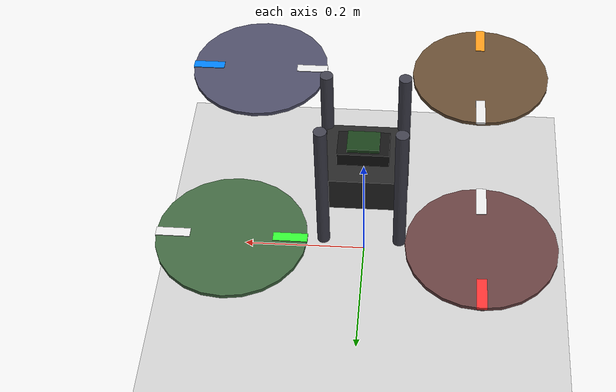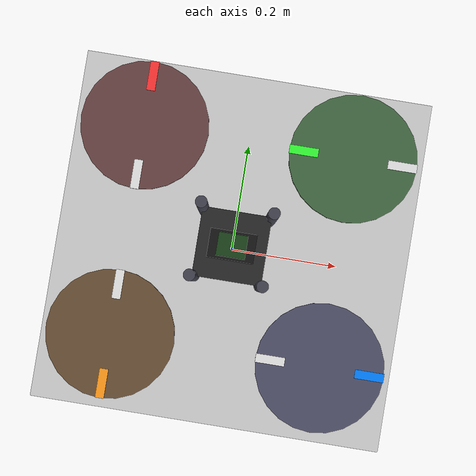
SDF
<?xml version="1.0" ?>
<sdf version="1.6">
  <world name="default">
    <!-- 1. Sun & Ground Plane -->
    <include>
      <uri>model://sun</uri>
    </include>
    <include>
      <uri>model://ground_plane</uri>
    </include>

    <physics type="ode">
      <max_step_size>0.002</max_step_size>
      <real_time_factor>1.0</real_time_factor>
      <real_time_update_rate>500</real_time_update_rate>
    </physics>

    <!-- 2. Iris Quadcopter Model -->
    <model name="iris">
      <pose>0 0 0.2 0 0 0</pose>

      <!-- ROOT LINK: Central Body -->
      <link name="base_link">
        <inertial>
          <mass>1.5</mass>
          <inertia>
            <ixx>0.0347563</ixx>
            <ixy>0</ixy>
            <ixz>0</ixz>
            <iyy>0.0458929</iyy>
            <iyz>0</iyz>
            <izz>0.0977</izz>
          </inertia>
        </inertial>

        <!-- Central body visual - carbon fiber look -->
        <visual name="body_visual">
          <geometry>
            <box>
              <size>0.12 0.12 0.06</size>
            </box>
          </geometry>
          <material>
            <ambient>0.05 0.05 0.05 1</ambient>
            <diffuse>0.15 0.15 0.15 1</diffuse>
            <specular>0.3 0.3 0.3 1</specular>
          </material>
        </visual>

        <!-- Battery compartment visual -->
        <visual name="battery_visual">
          <pose>0 0 0.04 0 0 0</pose>
          <geometry>
            <box>
              <size>0.08 0.05 0.025</size>
            </box>
          </geometry>
          <material>
            <ambient>0.02 0.02 0.02 1</ambient>
            <diffuse>0.08 0.08 0.08 1</diffuse>
            <specular>0.2 0.2 0.2 1</specular>
          </material>
        </visual>

        <!-- Flight controller board visual -->
        <visual name="fc_visual">
          <pose>0 0 0.055 0 0 0</pose>
          <geometry>
            <box>
              <size>0.05 0.04 0.008</size>
            </box>
          </geometry>
          <material>
            <ambient>0.05 0.1 0.05 1</ambient>
            <diffuse>0.1 0.25 0.1 1</diffuse>
            <specular>0.3 0.3 0.3 1</specular>
          </material>
        </visual>

        <!-- Physical collision box -->
        <collision name="body_collision">
          <geometry>
            <box>
              <size>0.12 0.12 0.06</size>
            </box>
          </geometry>
        </collision>

        <!-- Built-in Gazebo IMU Sensor -->
        <sensor name="imu_sensor" type="imu">
          <always_on>1</always_on>
          <update_rate>250</update_rate>
          <visualize>true</visualize>
          <imu>
            <angular_velocity>
              <x><noise type="gaussian"><mean>0</mean><stddev>0.0002</stddev></noise></x>
              <y><noise type="gaussian"><mean>0</mean><stddev>0.0002</stddev></noise></y>
              <z><noise type="gaussian"><mean>0</mean><stddev>0.0002</stddev></noise></z>
            </angular_velocity>
            <linear_acceleration>
              <x><noise type="gaussian"><mean>0</mean><stddev>0.017</stddev></noise></x>
              <y><noise type="gaussian"><mean>0</mean><stddev>0.017</stddev></noise></y>
              <z><noise type="gaussian"><mean>0</mean><stddev>0.017</stddev></noise></z>
            </linear_acceleration>
          </imu>
        </sensor>
      </link>

      <!-- ARM 0: Rear Right (extends to rotor 0) -->
      <link name="arm_0">
        <pose>0.06 -0.06 0.015 0 0 0.785398</pose>  <!-- 45 deg -->
        <inertial>
          <mass>0.025</mass>
          <inertia>
            <ixx>0.000015</ixx><ixy>0</ixy><ixz>0</ixz>
            <iyy>0.00012</iyy><iyz>0</iyz>
            <izz>0.000135</izz>
          </inertia>
        </inertial>
        <visual name="arm_0_visual">
          <geometry>
            <cylinder><radius>0.01</radius><length>0.24</length></cylinder>
          </geometry>
          <material>
            <ambient>0.1 0.1 0.12 1</ambient>
            <diffuse>0.25 0.25 0.3 1</diffuse>
            <specular>0.4 0.4 0.4 1</specular>
          </material>
        </visual>
        <collision name="arm_0_collision">
          <geometry>
            <cylinder><radius>0.01</radius><length>0.24</length></cylinder>
          </geometry>
        </collision>
      </link>
      <joint name="arm_0_joint" type="fixed">
        <parent>base_link</parent>
        <child>arm_0</child>
      </joint>

      <!-- ARM 1: Front Right -->
      <link name="arm_1">
        <pose>-0.06 0.06 0.015 0 0 -0.785398</pose>  <!-- -45 deg -->
        <inertial>
          <mass>0.025</mass>
          <inertia>
            <ixx>0.000015</ixx><ixy>0</ixy><ixz>0</ixz>
            <iyy>0.00012</iyy><iyz>0</iyz>
            <izz>0.000135</izz>
          </inertia>
        </inertial>
        <visual name="arm_1_visual">
          <geometry>
            <cylinder><radius>0.01</radius><length>0.24</length></cylinder>
          </geometry>
          <material>
            <ambient>0.1 0.1 0.12 1</ambient>
            <diffuse>0.25 0.25 0.3 1</diffuse>
            <specular>0.4 0.4 0.4 1</specular>
          </material>
        </visual>
        <collision name="arm_1_collision">
          <geometry>
            <cylinder><radius>0.01</radius><length>0.24</length></cylinder>
          </geometry>
        </collision>
      </link>
      <joint name="arm_1_joint" type="fixed">
        <parent>base_link</parent>
        <child>arm_1</child>
      </joint>

      <!-- ARM 2: Rear Left -->
      <link name="arm_2">
        <pose>0.06 0.06 0.015 0 0 2.35619</pose>  <!-- 135 deg -->
        <inertial>
          <mass>0.025</mass>
          <inertia>
            <ixx>0.000015</ixx><ixy>0</ixy><ixz>0</ixz>
            <iyy>0.00012</iyy><iyz>0</iyz>
            <izz>0.000135</izz>
          </inertia>
        </inertial>
        <visual name="arm_2_visual">
          <geometry>
            <cylinder><radius>0.01</radius><length>0.24</length></cylinder>
          </geometry>
          <material>
            <ambient>0.1 0.1 0.12 1</ambient>
            <diffuse>0.25 0.25 0.3 1</diffuse>
            <specular>0.4 0.4 0.4 1</specular>
          </material>
        </visual>
        <collision name="arm_2_collision">
          <geometry>
            <cylinder><radius>0.01</radius><length>0.24</length></cylinder>
          </geometry>
        </collision>
      </link>
      <joint name="arm_2_joint" type="fixed">
        <parent>base_link</parent>
        <child>arm_2</child>
      </joint>

      <!-- ARM 3: Front Left -->
      <link name="arm_3">
        <pose>-0.06 -0.06 0.015 0 0 -2.35619</pose>  <!-- -135 deg -->
        <inertial>
          <mass>0.025</mass>
          <inertia>
            <ixx>0.000015</ixx><ixy>0</ixy><ixz>0</ixz>
            <iyy>0.00012</iyy><iyz>0</iyz>
            <izz>0.000135</izz>
          </inertia>
        </inertial>
        <visual name="arm_3_visual">
          <geometry>
            <cylinder><radius>0.01</radius><length>0.24</length></cylinder>
          </geometry>
          <material>
            <ambient>0.1 0.1 0.12 1</ambient>
            <diffuse>0.25 0.25 0.3 1</diffuse>
            <specular>0.4 0.4 0.4 1</specular>
          </material>
        </visual>
        <collision name="arm_3_collision">
          <geometry>
            <cylinder><radius>0.01</radius><length>0.24</length></cylinder>
          </geometry>
        </collision>
      </link>
      <joint name="arm_3_joint" type="fixed">
        <parent>base_link</parent>
        <child>arm_3</child>
      </joint>

      <!-- ROTOR 0: Rear Right (CW) - Blue prop tips -->
      <link name="rotor_0">
        <pose>0.18 -0.18 0.035 0 0 0</pose>
        <inertial>
          <mass>0.008</mass>
          <inertia>
            <ixx>1.5e-06</ixx><ixy>0</ixy><ixz>0</ixz>
            <iyy>0.0005</iyy><iyz>0</iyz>
            <izz>0.0005015</izz>
          </inertia>
        </inertial>
        <visual name="rotor_0_visual">
          <geometry>
            <cylinder><radius>0.11</radius><length>0.006</length></cylinder>
          </geometry>
          <material>
            <ambient>0.15 0.15 0.18 1</ambient>
            <diffuse>0.3 0.3 0.4 1</diffuse>
            <specular>0.5 0.5 0.5 1</specular>
          </material>
        </visual>
        <!-- Blue tip markers -->
        <visual name="rotor_0_tip1">
          <pose>0.085 0 0.002 0 0 0</pose>
          <geometry>
            <box><size>0.05 0.015 0.004</size></box>
          </geometry>
          <material>
            <ambient>0 0.2 0.8 1</ambient>
            <diffuse>0 0.5 1 1</diffuse>
            <specular>0.8 0.8 0.8 1</specular>
            <emissive>0.2 0.4 0.8 1</emissive>
          </material>
        </visual>
        <visual name="rotor_0_tip2">
          <pose>-0.085 0 0.002 0 0 0</pose>
          <geometry>
            <box><size>0.05 0.015 0.004</size></box>
          </geometry>
          <material>
            <ambient>0.8 0.8 0.8 1</ambient>
            <diffuse>0.9 0.9 0.9 1</diffuse>
            <specular>0.5 0.5 0.5 1</specular>
          </material>
        </visual>
      </link>
      <joint name="rotor_0_joint" type="revolute">
        <parent>arm_0</parent>
        <child>rotor_0</child>
        <pose>0.12 -0.12 0.02 0 0 0</pose>
        <axis>
          <xyz>0 0 1</xyz>
          <limit>
            <lower>-1e16</lower>
            <upper>1e16</upper>
          </limit>
          <dynamics>
            <damping>0.001</damping>
            <friction>0.0001</friction>
          </dynamics>
        </axis>
        <physics>
          <ode>
            <implicit_spring_damper>1</implicit_spring_damper>
          </ode>
        </physics>
      </joint>

      <!-- ROTOR 1: Front Right (CCW) - Red prop tips -->
      <link name="rotor_1">
        <pose>-0.18 0.18 0.035 0 0 0</pose>
        <inertial>
          <mass>0.008</mass>
          <inertia>
            <ixx>1.5e-06</ixx><ixy>0</ixy><ixz>0</ixz>
            <iyy>0.0005</iyy><iyz>0</iyz>
            <izz>0.0005015</izz>
          </inertia>
        </inertial>
        <visual name="rotor_1_visual">
          <geometry>
            <cylinder><radius>0.11</radius><length>0.006</length></cylinder>
          </geometry>
          <material>
            <ambient>0.18 0.12 0.12 1</ambient>
            <diffuse>0.4 0.25 0.25 1</diffuse>
            <specular>0.5 0.5 0.5 1</specular>
          </material>
        </visual>
        <visual name="rotor_1_tip1">
          <pose>0 0.085 0.002 0 0 0</pose>
          <geometry>
            <box><size>0.015 0.05 0.004</size></box>
          </geometry>
          <material>
            <ambient>0.8 0.1 0.1 1</ambient>
            <diffuse>1 0.2 0.2 1</diffuse>
            <specular>0.8 0.8 0.8 1</specular>
            <emissive>0.8 0.2 0.2 1</emissive>
          </material>
        </visual>
        <visual name="rotor_1_tip2">
          <pose>0 -0.085 0.002 0 0 0</pose>
          <geometry>
            <box><size>0.015 0.05 0.004</size></box>
          </geometry>
          <material>
            <ambient>0.8 0.8 0.8 1</ambient>
            <diffuse>0.9 0.9 0.9 1</diffuse>
            <specular>0.5 0.5 0.5 1</specular>
          </material>
        </visual>
      </link>
      <joint name="rotor_1_joint" type="revolute">
        <parent>arm_1</parent>
        <child>rotor_1</child>
        <pose>-0.12 0.12 0.02 0 0 0</pose>
        <axis>
          <xyz>0 0 1</xyz>
          <limit>
            <lower>-1e16</lower>
            <upper>1e16</upper>
          </limit>
          <dynamics>
            <damping>0.001</damping>
            <friction>0.0001</friction>
          </dynamics>
        </axis>
        <physics>
          <ode>
            <implicit_spring_damper>1</implicit_spring_damper>
          </ode>
        </physics>
      </joint>

      <!-- ROTOR 2: Rear Left (CCW) - Green prop tips -->
      <link name="rotor_2">
        <pose>0.18 0.18 0.035 0 0 0</pose>
        <inertial>
          <mass>0.008</mass>
          <inertia>
            <ixx>1.5e-06</ixx><ixy>0</ixy><ixz>0</ixz>
            <iyy>0.0005</iyy><iyz>0</iyz>
            <izz>0.0005015</izz>
          </inertia>
        </inertial>
        <visual name="rotor_2_visual">
          <geometry>
            <cylinder><radius>0.11</radius><length>0.006</length></cylinder>
          </geometry>
          <material>
            <ambient>0.12 0.18 0.12 1</ambient>
            <diffuse>0.25 0.4 0.25 1</diffuse>
            <specular>0.5 0.5 0.5 1</specular>
          </material>
        </visual>
        <visual name="rotor_2_tip1">
          <pose>-0.085 0 0.002 0 0 0</pose>
          <geometry>
            <box><size>0.05 0.015 0.004</size></box>
          </geometry>
          <material>
            <ambient>0.2 0.8 0.2 1</ambient>
            <diffuse>0.2 1 0.2 1</diffuse>
            <specular>0.8 0.8 0.8 1</specular>
            <emissive>0.2 0.8 0.2 1</emissive>
          </material>
        </visual>
        <visual name="rotor_2_tip2">
          <pose>0.085 0 0.002 0 0 0</pose>
          <geometry>
            <box><size>0.05 0.015 0.004</size></box>
          </geometry>
          <material>
            <ambient>0.8 0.8 0.8 1</ambient>
            <diffuse>0.9 0.9 0.9 1</diffuse>
            <specular>0.5 0.5 0.5 1</specular>
          </material>
        </visual>
      </link>
      <joint name="rotor_2_joint" type="revolute">
        <parent>arm_2</parent>
        <child>rotor_2</child>
        <pose>0.12 0.12 0.02 0 0 0</pose>
        <axis>
          <xyz>0 0 1</xyz>
          <limit>
            <lower>-1e16</lower>
            <upper>1e16</upper>
          </limit>
          <dynamics>
            <damping>0.001</damping>
            <friction>0.0001</friction>
          </dynamics>
        </axis>
        <physics>
          <ode>
            <implicit_spring_damper>1</implicit_spring_damper>
          </ode>
        </physics>
      </joint>

      <!-- ROTOR 3: Front Left (CW) - Orange prop tips -->
      <link name="rotor_3">
        <pose>-0.18 -0.18 0.035 0 0 0</pose>
        <inertial>
          <mass>0.008</mass>
          <inertia>
            <ixx>1.5e-06</ixx><ixy>0</ixy><ixz>0</ixz>
            <iyy>0.0005</iyy><iyz>0</iyz>
            <izz>0.0005015</izz>
          </inertia>
        </inertial>
        <visual name="rotor_3_visual">
          <geometry>
            <cylinder><radius>0.11</radius><length>0.006</length></cylinder>
          </geometry>
          <material>
            <ambient>0.18 0.15 0.1 1</ambient>
            <diffuse>0.4 0.3 0.2 1</diffuse>
            <specular>0.5 0.5 0.5 1</specular>
          </material>
        </visual>
        <visual name="rotor_3_tip1">
          <pose>0 -0.085 0.002 0 0 0</pose>
          <geometry>
            <box><size>0.015 0.05 0.004</size></box>
          </geometry>
          <material>
            <ambient>0.9 0.5 0.1 1</ambient>
            <diffuse>1 0.6 0.1 1</diffuse>
            <specular>0.8 0.8 0.8 1</specular>
            <emissive>0.8 0.5 0.1 1</emissive>
          </material>
        </visual>
        <visual name="rotor_3_tip2">
          <pose>0 0.085 0.002 0 0 0</pose>
          <geometry>
            <box><size>0.015 0.05 0.004</size></box>
          </geometry>
          <material>
            <ambient>0.8 0.8 0.8 1</ambient>
            <diffuse>0.9 0.9 0.9 1</diffuse>
            <specular>0.5 0.5 0.5 1</specular>
          </material>
        </visual>
      </link>
      <joint name="rotor_3_joint" type="revolute">
        <parent>arm_3</parent>
        <child>rotor_3</child>
        <pose>-0.12 -0.12 0.02 0 0 0</pose>
        <axis>
          <xyz>0 0 1</xyz>
          <limit>
            <lower>-1e16</lower>
            <upper>1e16</upper>
          </limit>
          <dynamics>
            <damping>0.001</damping>
            <friction>0.0001</friction>
          </dynamics>
        </axis>
        <physics>
          <ode>
            <implicit_spring_damper>1</implicit_spring_damper>
          </ode>
        </physics>
      </joint>

      <plugin name="thejas_sitl" filename="libthejas_sitl.so"/>

    </model>
  </world>
</sdf>
